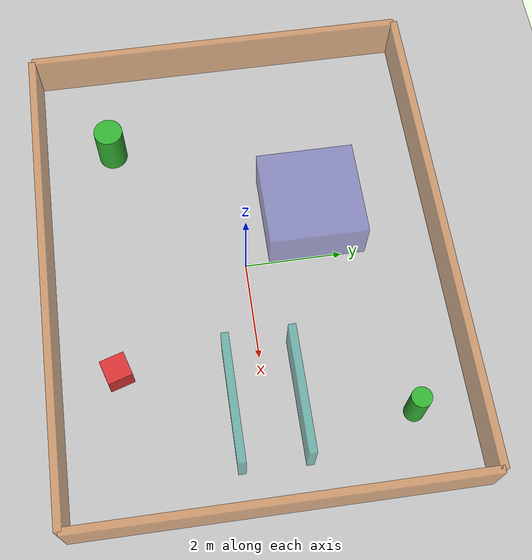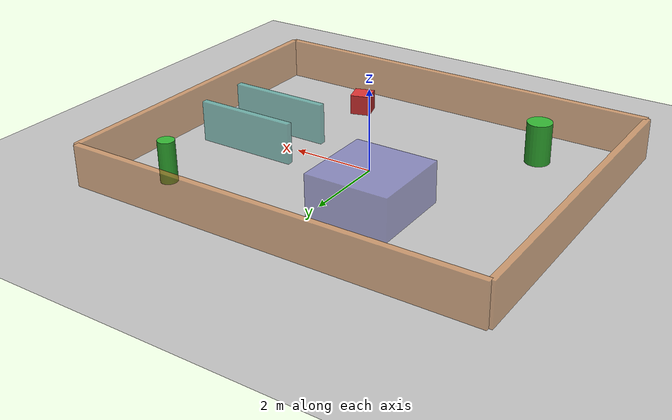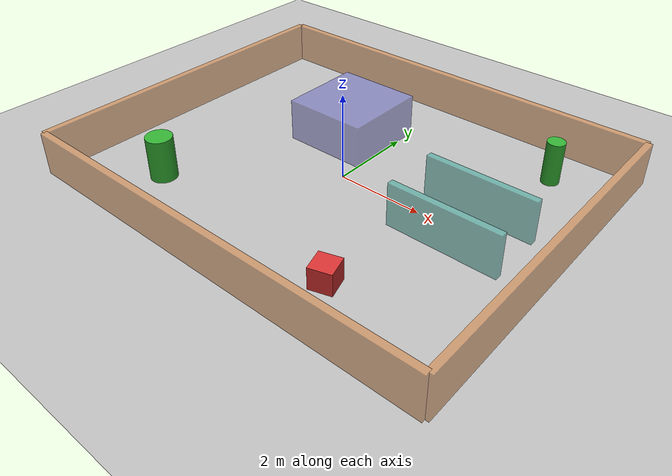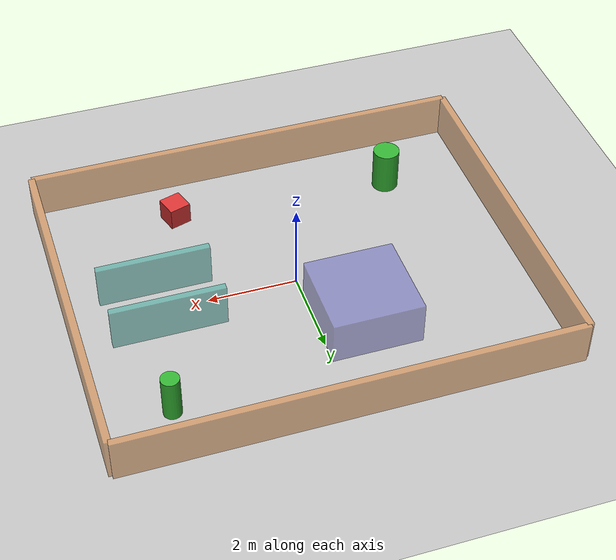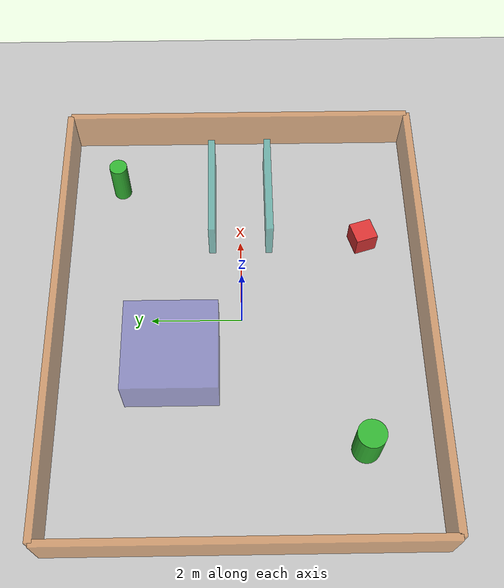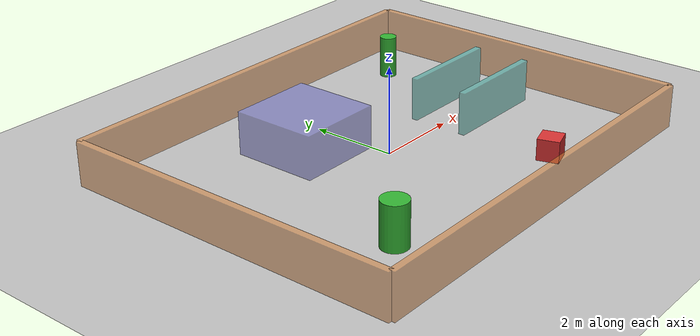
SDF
<?xml version="1.0" ?>
<sdf version="1.9">
  <world name="slam_test_world">

<!--         下面这五个必须显式列出来，否则物理引擎/传感器/建图都会失效 -->
    <plugin filename="gz-sim-physics-system" name="gz::sim::systems::Physics"></plugin>
    <plugin filename="gz-sim-sensors-system" name="gz::sim::systems::Sensors">
      <render_engine>ogre2</render_engine>
    </plugin>
    <plugin filename="gz-sim-scene-broadcaster-system" name="gz::sim::systems::SceneBroadcaster"></plugin>
    <plugin filename="gz-sim-user-commands-system" name="gz::sim::systems::UserCommands"></plugin>
    <plugin filename="gz-sim-imu-system"
name="gz::sim::systems::Imu"></plugin>

    <physics name="1ms" type="ignored">
      <max_step_size>0.001</max_step_size>
      <real_time_factor>1.0</real_time_factor>
    </physics>

    <light type="directional" name="sun">
      <cast_shadows>true</cast_shadows>
      <pose>0 0 10 0 0 0</pose>
      <diffuse>0.8 0.8 0.8 1</diffuse>
      <specular>0.2 0.2 0.2 1</specular>
      <direction>-0.5 0.1 -0.9</direction>
    </light>

    <!-- 地面：浅灰色，不透明（作为背景基准面） -->
    <model name="ground_plane">
      <static>true</static>
      <link name="link">
        <collision name="collision">
          <geometry><plane><normal>0 0 1</normal></plane></geometry>
        </collision>
        <visual name="visual">
          <geometry><plane><normal>0 0 1</normal><size>20 20</size></plane></geometry>
          <material>
            <ambient>0.75 0.75 0.75 1</ambient>
            <diffuse>0.75 0.75 0.75 1</diffuse>
            <specular>0.1 0.1 0.1 1</specular>
          </material>
        </visual>
      </link>
    </model>

    <!-- ===== 外墙：10m x 8m 矩形房间，墙高1m能保证被雷达扫到 =====
         暖橙色 + 半透明，方便透过墙看到内部机器人位置 -->
    <model name="wall_north"><static>true</static><pose>0 4 0.5 0 0 0</pose>
      <link name="link">
        <collision name="c"><geometry><box><size>10 0.15 1</size></box></geometry></collision>
        <visual name="v"><geometry><box><size>10 0.15 1</size></box></geometry>
          <material>
            <ambient>0.85 0.5 0.2 1</ambient>
            <diffuse>0.85 0.5 0.2 0.55</diffuse>
            <specular>0.2 0.2 0.2 1</specular>
          </material>
          <transparency>0.45</transparency>
        </visual>
      </link>
    </model>
    <model name="wall_south"><static>true</static><pose>0 -4 0.5 0 0 0</pose>
      <link name="link">
        <collision name="c"><geometry><box><size>10 0.15 1</size></box></geometry></collision>
        <visual name="v"><geometry><box><size>10 0.15 1</size></box></geometry>
          <material>
            <ambient>0.85 0.5 0.2 1</ambient>
            <diffuse>0.85 0.5 0.2 0.55</diffuse>
            <specular>0.2 0.2 0.2 1</specular>
          </material>
          <transparency>0.45</transparency>
        </visual>
      </link>
    </model>
    <model name="wall_east"><static>true</static><pose>5 0 0.5 0 0 0</pose>
      <link name="link">
        <collision name="c"><geometry><box><size>0.15 8 1</size></box></geometry></collision>
        <visual name="v"><geometry><box><size>0.15 8 1</size></box></geometry>
          <material>
            <ambient>0.85 0.5 0.2 1</ambient>
            <diffuse>0.85 0.5 0.2 0.55</diffuse>
            <specular>0.2 0.2 0.2 1</specular>
          </material>
          <transparency>0.45</transparency>
        </visual>
      </link>
    </model>
    <model name="wall_west"><static>true</static><pose>-5 0 0.5 0 0 0</pose>
      <link name="link">
        <collision name="c"><geometry><box><size>0.15 8 1</size></box></geometry></collision>
        <visual name="v"><geometry><box><size>0.15 8 1</size></box></geometry>
          <material>
            <ambient>0.85 0.5 0.2 1</ambient>
            <diffuse>0.85 0.5 0.2 0.55</diffuse>
            <specular>0.2 0.2 0.2 1</specular>
          </material>
          <transparency>0.45</transparency>
        </visual>
      </link>
    </model>

    <!-- ===== 中央"孤岛"：逼机器人绕圈走，专门用来测试回环检测 =====
         蓝紫色 + 半透明，和外墙区分开 -->
    <model name="center_island"><static>true</static><pose>-1 1.5 0.5 0 0 0</pose>
      <link name="link">
        <collision name="c"><geometry><box><size>2 2 1</size></box></geometry></collision>
        <visual name="v"><geometry><box><size>2 2 1</size></box></geometry>
          <material>
            <ambient>0.35 0.35 0.75 1</ambient>
            <diffuse>0.35 0.35 0.75 0.5</diffuse>
            <specular>0.2 0.2 0.2 1</specular>
          </material>
          <transparency>0.5</transparency>
        </visual>
      </link>
    </model>

    <!-- ===== 窄走廊：两段平行墙夹出约1.2m宽通道，测试 DWA在狭窄空间的行为 =====
         青绿色 + 半透明，和外墙/孤岛区分开 -->
    <model name="corridor_wall_a"><static>true</static><pose>3 0.65 0.5 0 0 0</pose>
      <link name="link">
        <collision name="c"><geometry><box><size>2.5 0.15 1</size></box></geometry></collision>
        <visual name="v"><geometry><box><size>2.5 0.15 1</size></box></geometry>
          <material>
            <ambient>0.2 0.65 0.6 1</ambient>
            <diffuse>0.2 0.65 0.6 0.55</diffuse>
            <specular>0.2 0.2 0.2 1</specular>
          </material>
          <transparency>0.45</transparency>
        </visual>
      </link>
    </model>
    <model name="corridor_wall_b"><static>true</static><pose>3 -0.65 0.5 0 0 0</pose>
      <link name="link">
        <collision name="c"><geometry><box><size>2.5 0.15 1</size></box></geometry></collision>
        <visual name="v"><geometry><box><size>2.5 0.15 1</size></box></geometry>
          <material>
            <ambient>0.2 0.65 0.6 1</ambient>
            <diffuse>0.2 0.65 0.6 0.55</diffuse>
            <specular>0.2 0.2 0.2 1</specular>
          </material>
          <transparency>0.45</transparency>
        </visual>
      </link>
    </model>

    <!-- ===== 零散障碍物：用于Nav2局部避障测试 =====
         保持不透明、高饱和度，作为视觉焦点障碍物，不与墙体透明混淆 -->
    <model name="box_obstacle_1"><static>true</static><pose>2 -2.8 0.25 0 0 0.3</pose>
      <link name="link">
        <collision name="c"><geometry><box><size>0.5 0.5 0.5</size></box></geometry></collision>
        <visual name="v"><geometry><box><size>0.5 0.5 0.5</size></box></geometry>
          <material>
            <ambient>0.85 0.2 0.2 1</ambient>
            <diffuse>0.85 0.2 0.2 1</diffuse>
            <specular>0.3 0.3 0.3 1</specular>
          </material>
        </visual>
      </link>
    </model>
    <model name="cylinder_obstacle_1"><static>true</static><pose>-3 -2.5 0.5 0 0 0</pose>
      <link name="link">
        <collision name="c"><geometry><cylinder><radius>0.3</radius><length>1</length></cylinder></geometry></collision>
        <visual name="v"><geometry><cylinder><radius>0.3</radius><length>1</length></cylinder></geometry>
          <material>
            <ambient>0.2 0.7 0.2 1</ambient>
            <diffuse>0.2 0.7 0.2 1</diffuse>
            <specular>0.3 0.3 0.3 1</specular>
          </material>
        </visual>
      </link>
    </model>
    <model name="cylinder_obstacle_2"><static>true</static><pose>3.5 2.8 0.5 0 0 0</pose>
      <link name="link">
        <collision name="c"><geometry><cylinder><radius>0.2</radius><length>1</length></cylinder></geometry></collision>
        <visual name="v"><geometry><cylinder><radius>0.2</radius><length>1</length></cylinder></geometry>
          <material>
            <ambient>0.2 0.7 0.2 1</ambient>
            <diffuse>0.2 0.7 0.2 1</diffuse>
            <specular>0.3 0.3 0.3 1</specular>
          </material>
        </visual>
      </link>
    </model>

  </world>
</sdf>
